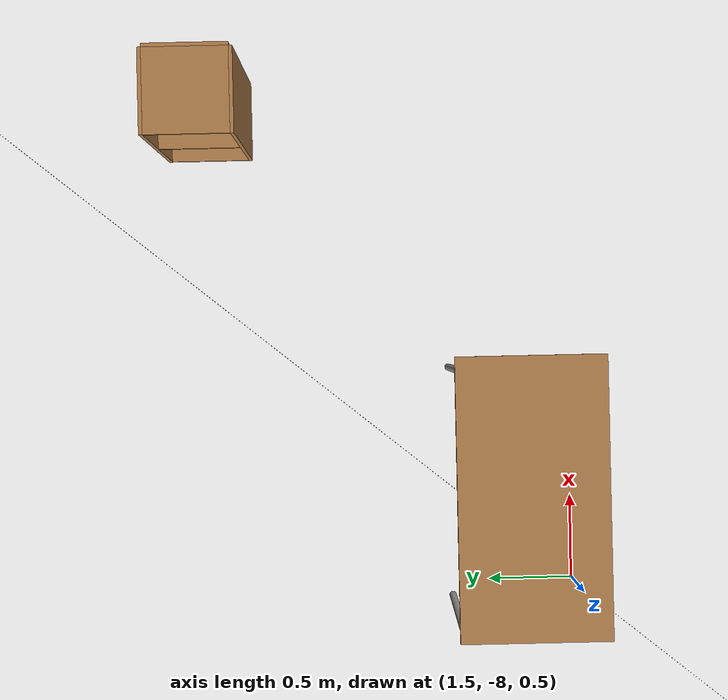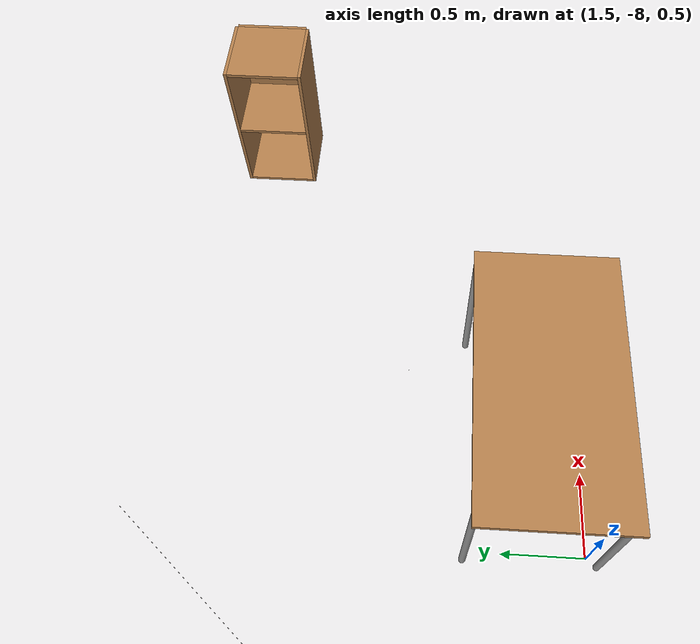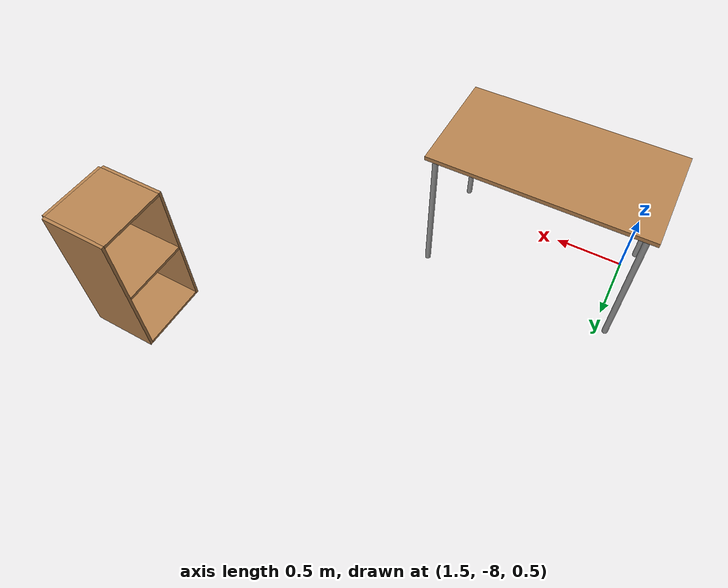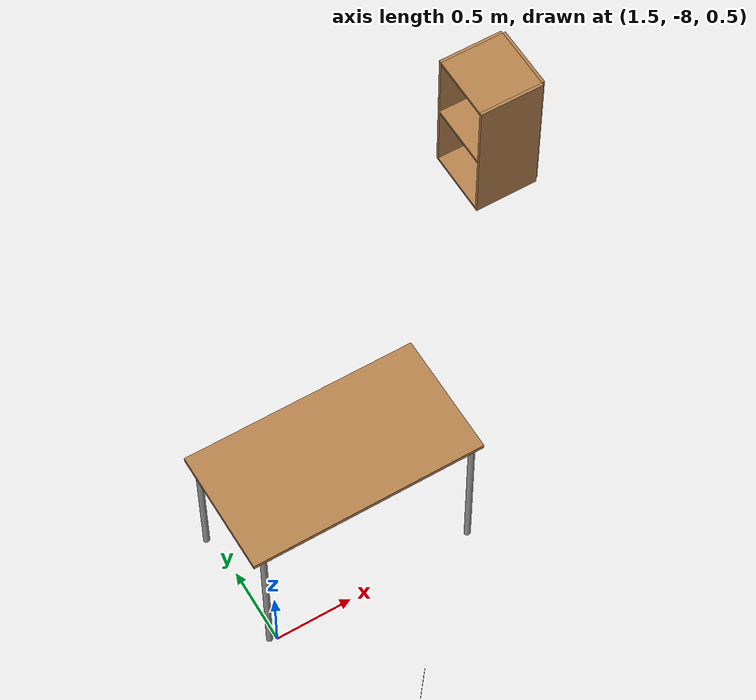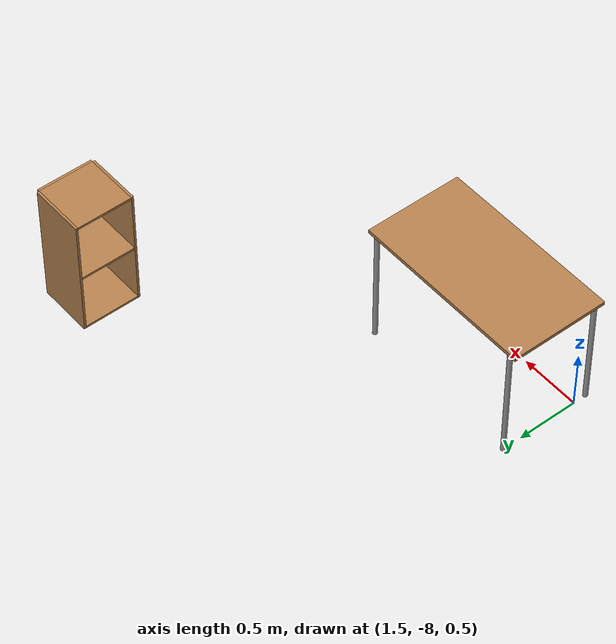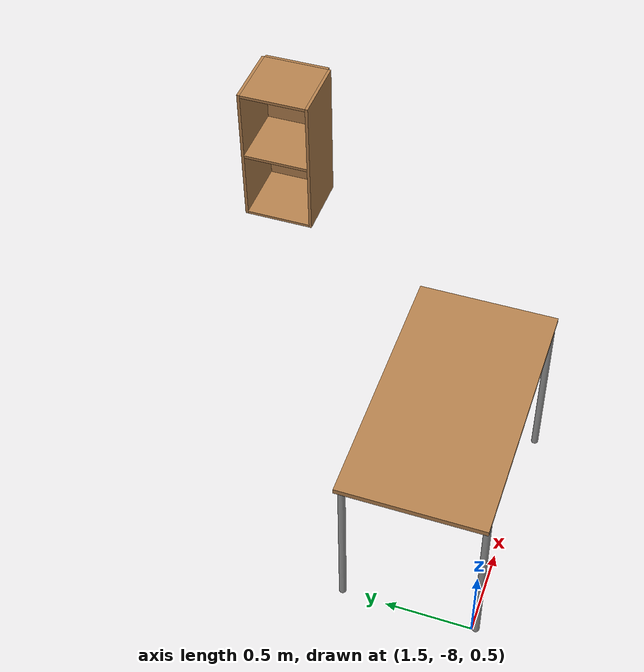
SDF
<sdf version="1.7">
 <world name="default">
  <light name="sun" type="directional">
   <pose>0 0 10 0 -0 0</pose>
   <diffuse>0.8 0.8 0.8 1</diffuse>
   <specular>0.2 0.2 0.2 1</specular>
   <attenuation>
    <range>1000</range>
    <constant>0.9</constant>
    <linear>0.01</linear>
    <quadratic>0.001</quadratic>
   </attenuation>
   <direction>-0.5 0.1 -0.9</direction>
   <spot><inner_angle>0</inner_angle><outer_angle>0</outer_angle><falloff>0</falloff></spot>
  </light>
  <model name="ground_plane">
   <static>1</static>
   <link name="link">
    <collision name="collision">
     <geometry><plane><normal>0 0 1</normal><size>100 100</size></plane></geometry>
     <surface>
      <contact><collide_bitmask>65535</collide_bitmask></contact>
      <friction><ode><mu>100</mu><mu2>50</mu2></ode></friction>
     </surface>
    </collision>
    <visual name="visual">
     <cast_shadows>0</cast_shadows>
     <geometry><plane><normal>0 0 1</normal><size>100 100</size></plane></geometry>
     <material>
      <script><uri>file://media/materials/scripts/gazebo.material</uri><name>Gazebo/Grey</name></script>
     </material>
    </visual>
   </link>
  </model>
  <gravity>0 0 -9.8</gravity>
  <magnetic_field>6e-06 2.3e-05 -4.2e-05</magnetic_field>
  <atmosphere type="adiabatic"/>
  <physics type="ode">
   <max_step_size>0.001</max_step_size>
   <real_time_factor>1</real_time_factor>
   <real_time_update_rate>1000</real_time_update_rate>
  </physics>
  <scene><ambient>0.4 0.4 0.4 1</ambient><background>0.7 0.7 0.7 1</background><shadows>1</shadows></scene>
  <spherical_coordinates>
   <surface_model>EARTH_WGS84</surface_model>
   <latitude_deg>0</latitude_deg>
   <longitude_deg>0</longitude_deg>
   <elevation>0</elevation>
   <heading_deg>0</heading_deg>
  </spherical_coordinates>
  <model name="table">
   <static>1</static>
   <link name="link">
    <collision name="surface">
     <pose>0 0 1 0 -0 0</pose>
     <geometry><box><size>1.5 0.8 0.03</size></box></geometry>
     <surface><friction><ode><mu>0.6</mu><mu2>0.6</mu2></ode></friction></surface>
    </collision>
    <visual name="visual1">
     <pose>0 0 1 0 -0 0</pose>
     <geometry><box><size>1.5 0.8 0.03</size></box></geometry>
     <material>
      <script><uri>file://media/materials/scripts/gazebo.material</uri><name>Gazebo/Wood</name></script>
     </material>
    </visual>
    <collision name="front_left_leg">
     <pose>0.68 0.38 0.5 0 -0 0</pose>
     <geometry><cylinder><radius>0.02</radius><length>1</length></cylinder></geometry>
    </collision>
    <visual name="front_left_leg">
     <pose>0.68 0.38 0.5 0 -0 0</pose>
     <geometry><cylinder><radius>0.02</radius><length>1</length></cylinder></geometry>
     <material>
      <script><uri>file://media/materials/scripts/gazebo.material</uri><name>Gazebo/Grey</name></script>
     </material>
    </visual>
    <collision name="front_right_leg">
     <pose>0.68 -0.38 0.5 0 -0 0</pose>
     <geometry><cylinder><radius>0.02</radius><length>1</length></cylinder></geometry>
    </collision>
    <visual name="front_right_leg">
     <pose>0.68 -0.38 0.5 0 -0 0</pose>
     <geometry><cylinder><radius>0.02</radius><length>1</length></cylinder></geometry>
     <material>
      <script><uri>file://media/materials/scripts/gazebo.material</uri><name>Gazebo/Grey</name></script>
     </material>
    </visual>
    <collision name="back_right_leg">
     <pose>-0.68 -0.38 0.5 0 -0 0</pose>
     <geometry><cylinder><radius>0.02</radius><length>1</length></cylinder></geometry>
    </collision>
    <visual name="back_right_leg">
     <pose>-0.68 -0.38 0.5 0 -0 0</pose>
     <geometry><cylinder><radius>0.02</radius><length>1</length></cylinder></geometry>
     <material>
      <script><uri>file://media/materials/scripts/gazebo.material</uri><name>Gazebo/Grey</name></script>
     </material>
    </visual>
    <collision name="back_left_leg">
     <pose>-0.68 0.38 0.5 0 -0 0</pose>
     <geometry><cylinder><radius>0.02</radius><length>1</length></cylinder></geometry>
    </collision>
    <visual name="back_left_leg">
     <pose>-0.68 0.38 0.5 0 -0 0</pose>
     <geometry><cylinder><radius>0.02</radius><length>1</length></cylinder></geometry>
     <material>
      <script><uri>file://media/materials/scripts/gazebo.material</uri><name>Gazebo/Grey</name></script>
     </material>
    </visual>
   </link>
   <pose>2.11283 -7.65134 0.627546 0 -0 0</pose>
  </model>
  <model name="cabinet">
   <static>1</static>
   <link name="cabinet_bottom_plate">
    <inertial>
     <pose>0 0 -1 0 -0 0</pose>
     <inertia><ixx>2.05</ixx><ixy>0</ixy><ixz>0</ixz><iyy>2.05</iyy><iyz>0</iyz><izz>2.05</izz></inertia>
     <mass>25</mass>
    </inertial>
    <collision name="cabinet_bottom_plate_geom">
     <pose>0 0 0.01 0 -0 0</pose>
     <geometry><box><size>0.45 0.45 0.02</size></box></geometry>
    </collision>
    <visual name="cabinet_bottom_plate_geom_visual">
     <pose>0 0 0.01 0 -0 0</pose>
     <geometry><box><size>0.45 0.45 0.02</size></box></geometry>
     <material>
      <script><uri>file://media/materials/scripts/gazebo.material</uri><name>Gazebo/Wood</name></script>
     </material>
    </visual>
    <collision name="cabinet_bottom_plate_geom_cabinet_back_plate">
     <pose>0.235 0 0.51 0 -0 0</pose>
     <geometry><box><size>0.02 0.45 1.02</size></box></geometry>
    </collision>
    <visual name="cabinet_bottom_plate_geom_cabinet_back_plate_visual">
     <pose>0.235 0 0.51 0 -0 0</pose>
     <geometry><box><size>0.02 0.45 1.02</size></box></geometry>
     <material>
      <script><uri>file://media/materials/scripts/gazebo.material</uri><name>Gazebo/Wood</name></script>
     </material>
    </visual>
    <collision name="cabinet_bottom_plate_geom_cabinet_left_plate">
     <pose>0 0.235 0.51 0 -0 0</pose>
     <geometry><box><size>0.45 0.02 1.02</size></box></geometry>
    </collision>
    <visual name="cabinet_bottom_plate_geom_cabinet_left_plate_visual">
     <pose>0 0.235 0.51 0 -0 0</pose>
     <geometry><box><size>0.45 0.02 1.02</size></box></geometry>
     <material>
      <script><uri>file://media/materials/scripts/gazebo.material</uri><name>Gazebo/Wood</name></script>
     </material>
    </visual>
    <collision name="cabinet_bottom_plate_geom_cabinet_middle_plate">
     <pose>0 0 0.51 0 -0 0</pose>
     <geometry><box><size>0.45 0.45 0.02</size></box></geometry>
    </collision>
    <visual name="cabinet_bottom_plate_geom_cabinet_middle_plate_visual">
     <pose>0 0 0.51 0 -0 0</pose>
     <geometry><box><size>0.45 0.45 0.02</size></box></geometry>
     <material>
      <script><uri>file://media/materials/scripts/gazebo.material</uri><name>Gazebo/Wood</name></script>
     </material>
    </visual>
    <collision name="cabinet_bottom_plate_geom_cabinet_right_plate">
     <pose>0 -0.235 0.51 0 -0 0</pose>
     <geometry><box><size>0.45 0.02 1.02</size></box></geometry>
    </collision>
    <visual name="cabinet_bottom_plate_geom_cabinet_right_plate_visual">
     <pose>0 -0.235 0.51 0 -0 0</pose>
     <geometry><box><size>0.45 0.02 1.02</size></box></geometry>
     <material>
      <script><uri>file://media/materials/scripts/gazebo.material</uri><name>Gazebo/Wood</name></script>
     </material>
    </visual>
    <collision name="cabinet_bottom_plate_geom_cabinet_top_plate">
     <pose>0 0 1.01 0 -0 0</pose>
     <geometry><box><size>0.45 0.45 0.02</size></box></geometry>
    </collision>
    <visual name="cabinet_bottom_plate_geom_cabinet_top_plate_visual">
     <pose>0 0 1.01 0 -0 0</pose>
     <geometry><box><size>0.45 0.45 0.02</size></box></geometry>
     <material>
      <script><uri>file://media/materials/scripts/gazebo.material</uri><name>Gazebo/Wood</name></script>
     </material>
    </visual>
   </link>
   <pose>4.26282 -5.89572 0.731996 0 -0 0</pose>
  </model>
  <model name="unit_box">
   <pose>-91.5931 -32.1104 -1130.87 -0.477579 -0.179801 2.52457</pose>
   <link name="link">
    <inertial>
     <mass>1</mass>
     <inertia>
      <ixx>0.166667</ixx>
      <ixy>0</ixy>
      <ixz>0</ixz>
      <iyy>0.166667</iyy>
      <iyz>0</iyz>
      <izz>0.166667</izz>
     </inertia>
    </inertial>
    <collision name="collision"><geometry><box><size>0.00134141 1097.04 1</size></box></geometry></collision>
    <visual name="visual">
     <geometry><box><size>0.00134141 1097.04 1</size></box></geometry>
     <material>
      <script><name>Gazebo/Grey</name><uri>file://media/materials/scripts/gazebo.material</uri></script>
     </material>
    </visual>
   </link>
  </model>
 </world>
</sdf>
